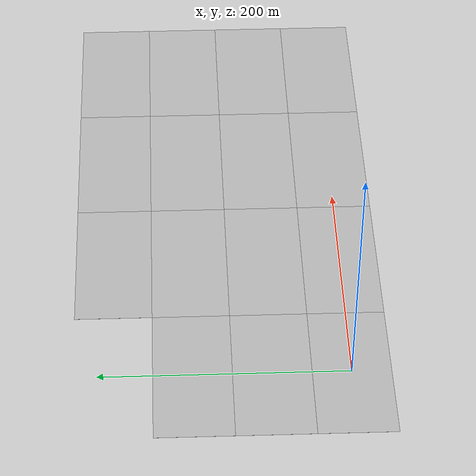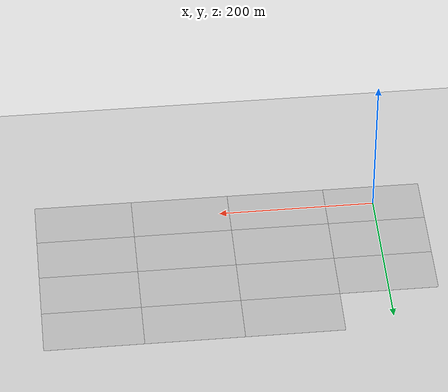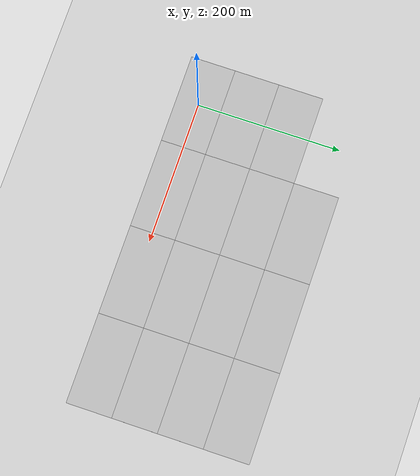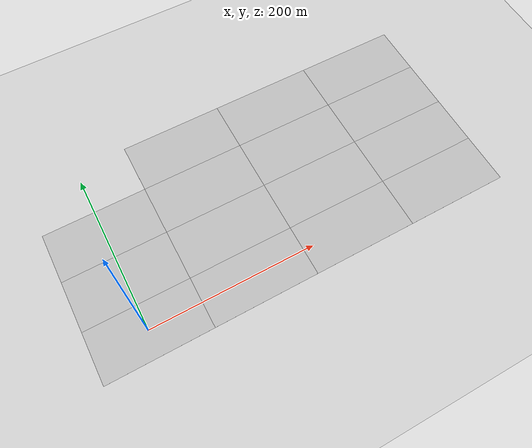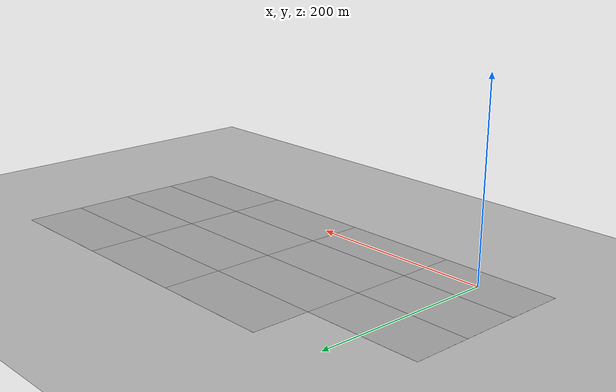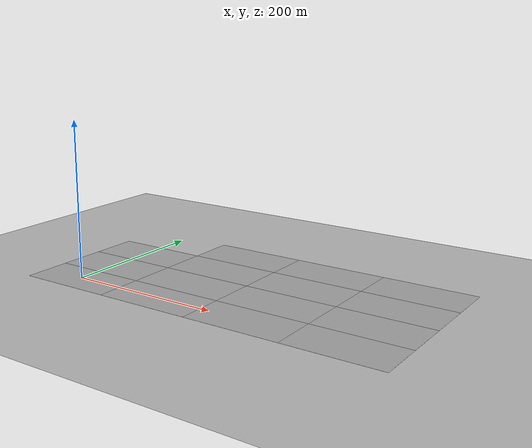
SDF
<?xml version="1.0"?>
<sdf version="1.4">
<model name="rafz">
  <static>true</static>
  <link name="rafz">
    <collision name="collision">
      <geometry>
        <plane>
          <normal>0 0 1</normal>
          <size>500 250</size>
        </plane>
      </geometry>
      <surface>
        <friction>
          <ode>
            <mu>0.2</mu>
            <mu2>0.2</mu2>
          </ode>
        </friction>
      </surface>
    </collision>

    <visual name="visual_1">
      <pose>0 187.5 0 0 0 0</pose>
      <cast_shadows>false</cast_shadows>
      <geometry>
        <plane>
          <normal>0 0 1</normal>
          <size>125 62.5</size>
        </plane>
      </geometry>
      <material>
        <script>
          <uri>model://rafz/materials/scripts</uri>
          <uri>model://rafz/materials/textures</uri>
          <name>Rafz/Rafz1</name>
        </script>
      </material>
    </visual>

    <visual name="visual_2">
      <pose>0 125 0 0 0 0</pose>
      <cast_shadows>false</cast_shadows>
      <geometry>
        <plane>
          <normal>0 0 1</normal>
          <size>125 62.5</size>
        </plane>
      </geometry>
      <material>
        <script>
          <uri>model://rafz/materials/scripts</uri>
          <uri>model://rafz/materials/textures</uri>
          <name>Rafz/Rafz2</name>
        </script>
      </material>
    </visual>

    <visual name="visual_3">
      <pose>0 62.5 0 0 0 0</pose>
      <cast_shadows>false</cast_shadows>
      <geometry>
        <plane>
          <normal>0 0 1</normal>
          <size>125 62.5</size>
        </plane>
      </geometry>
      <material>
        <script>
          <uri>model://rafz/materials/scripts</uri>
          <uri>model://rafz/materials/textures</uri>
          <name>Rafz/Rafz3</name>
        </script>
      </material>
    </visual>

    <visual name="visual_4">
      <pose>0 0 0 0 0 0</pose>
      <cast_shadows>false</cast_shadows>
      <geometry>
        <plane>
          <normal>0 0 1</normal>
          <size>125 62.5</size>
        </plane>
      </geometry>
      <material>
        <script>
          <uri>model://rafz/materials/scripts</uri>
          <uri>model://rafz/materials/textures</uri>
          <name>Rafz/Rafz4</name>
        </script>
      </material>
    </visual>

    <visual name="visual_5">
      <pose>125 0 0 0 0 0</pose>
      <cast_shadows>false</cast_shadows>
      <geometry>
        <plane>
          <normal>0 0 1</normal>
          <size>125 62.5</size>
        </plane>
      </geometry>
      <material>
        <script>
          <uri>model://rafz/materials/scripts</uri>
          <uri>model://rafz/materials/textures</uri>
          <name>Rafz/Rafz5</name>
        </script>
      </material>
    </visual>

    <visual name="visual_6">
      <pose>125 62.5 0 0 0 0</pose>
      <cast_shadows>false</cast_shadows>
      <geometry>
        <plane>
          <normal>0 0 1</normal>
          <size>125 62.5</size>
        </plane>
      </geometry>
      <material>
        <script>
          <uri>model://rafz/materials/scripts</uri>
          <uri>model://rafz/materials/textures</uri>
          <name>Rafz/Rafz6</name>
        </script>
      </material>
    </visual>

    <visual name="visual_7">
      <pose>125 125 0 0 0 0</pose>
      <cast_shadows>false</cast_shadows>
      <geometry>
        <plane>
          <normal>0 0 1</normal>
          <size>125 62.5</size>
        </plane>
      </geometry>
      <material>
        <script>
          <uri>model://rafz/materials/scripts</uri>
          <uri>model://rafz/materials/textures</uri>
          <name>Rafz/Rafz7</name>
        </script>
      </material>
    </visual>

    <visual name="visual_8">
      <pose>125 187.5 0 0 0 0</pose>
      <cast_shadows>false</cast_shadows>
      <geometry>
        <plane>
          <normal>0 0 1</normal>
          <size>125 62.5</size>
        </plane>
      </geometry>
      <material>
        <script>
          <uri>model://rafz/materials/scripts</uri>
          <uri>model://rafz/materials/textures</uri>
          <name>Rafz/Rafz8</name>
        </script>
      </material>
    </visual>

    <visual name="visual_9">
      <pose>250 187.5 0 0 0 0</pose>
      <cast_shadows>false</cast_shadows>
      <geometry>
        <plane>
          <normal>0 0 1</normal>
          <size>125 62.5</size>
        </plane>
      </geometry>
      <material>
        <script>
          <uri>model://rafz/materials/scripts</uri>
          <uri>model://rafz/materials/textures</uri>
          <name>Rafz/Rafz9</name>
        </script>
      </material>
    </visual>

    <visual name="visual_10">
      <pose>250 125 0 0 0 0</pose>
      <cast_shadows>false</cast_shadows>
      <geometry>
        <plane>
          <normal>0 0 1</normal>
          <size>125 62.5</size>
        </plane>
      </geometry>
      <material>
        <script>
          <uri>model://rafz/materials/scripts</uri>
          <uri>model://rafz/materials/textures</uri>
          <name>Rafz/Rafz10</name>
        </script>
      </material>
    </visual>

    <visual name="visual_11">
      <pose>250 62.5 0 0 0 0</pose>
      <cast_shadows>false</cast_shadows>
      <geometry>
        <plane>
          <normal>0 0 1</normal>
          <size>125 62.5</size>
        </plane>
      </geometry>
      <material>
        <script>
          <uri>model://rafz/materials/scripts</uri>
          <uri>model://rafz/materials/textures</uri>
          <name>Rafz/Rafz11</name>
        </script>
      </material>
    </visual>

    <visual name="visual_12">
      <pose>250 0 0 0 0 0</pose>
      <cast_shadows>false</cast_shadows>
      <geometry>
        <plane>
          <normal>0 0 1</normal>
          <size>125 62.5</size>
        </plane>
      </geometry>
      <material>
        <script>
          <uri>model://rafz/materials/scripts</uri>
          <uri>model://rafz/materials/textures</uri>
          <name>Rafz/Rafz12</name>
        </script>
      </material>
    </visual>

    <visual name="visual_13">
      <pose>375 0 0 0 0 0</pose>
      <cast_shadows>false</cast_shadows>
      <geometry>
        <plane>
          <normal>0 0 1</normal>
          <size>125 62.5</size>
        </plane>
      </geometry>
      <material>
        <script>
          <uri>model://rafz/materials/scripts</uri>
          <uri>model://rafz/materials/textures</uri>
          <name>Rafz/Rafz13</name>
        </script>
      </material>
    </visual>

    <visual name="visual_14">
      <pose>375 62.5 0 0 0 0</pose>
      <cast_shadows>false</cast_shadows>
      <geometry>
        <plane>
          <normal>0 0 1</normal>
          <size>125 62.5</size>
        </plane>
      </geometry>
      <material>
        <script>
          <uri>model://rafz/materials/scripts</uri>
          <uri>model://rafz/materials/textures</uri>
          <name>Rafz/Rafz14</name>
        </script>
      </material>
    </visual>

    <visual name="visual_15">
      <pose>375 125 0 0 0 0</pose>
      <cast_shadows>false</cast_shadows>
      <geometry>
        <plane>
          <normal>0 0 1</normal>
          <size>125 62.5</size>
        </plane>
      </geometry>
      <material>
        <script>
          <uri>model://rafz/materials/scripts</uri>
          <uri>model://rafz/materials/textures</uri>
          <name>Rafz/Rafz15</name>
        </script>
      </material>
    </visual>

    <visual name="visual_16">
      <pose>375 187.5 0 0 0 0</pose>
      <cast_shadows>false</cast_shadows>
      <geometry>
        <plane>
          <normal>0 0 1</normal>
          <size>125 62.5</size>
        </plane>
      </geometry>
      <material>
        <script>
          <uri>model://rafz/materials/scripts</uri>
          <uri>model://rafz/materials/textures</uri>
          <name>Rafz/Rafz16</name>
        </script>
      </material>
    </visual>
  </link>
</model>
</sdf>
